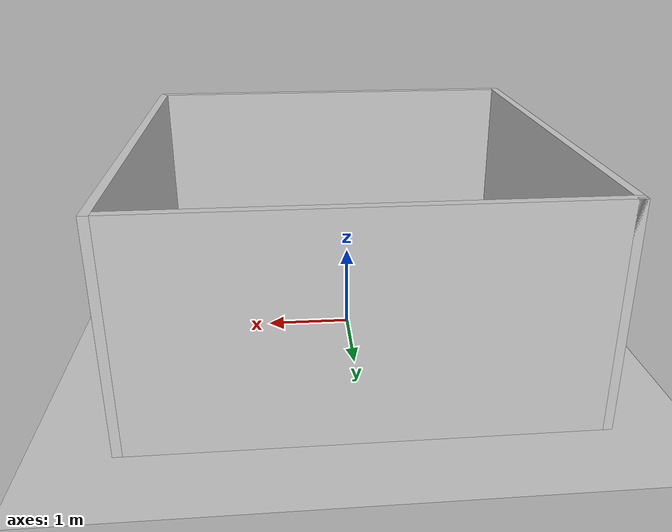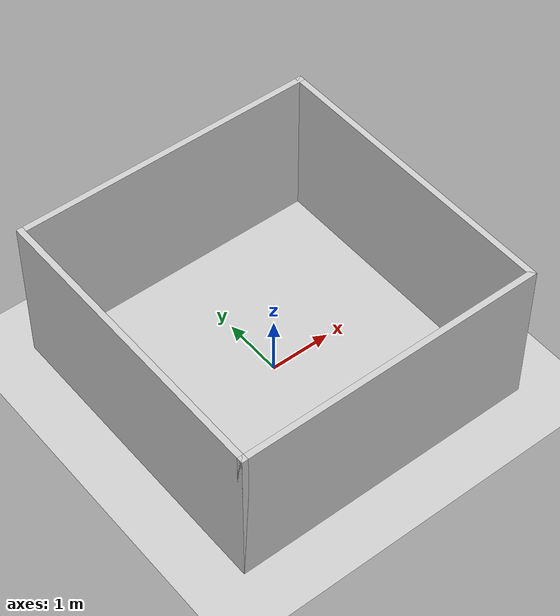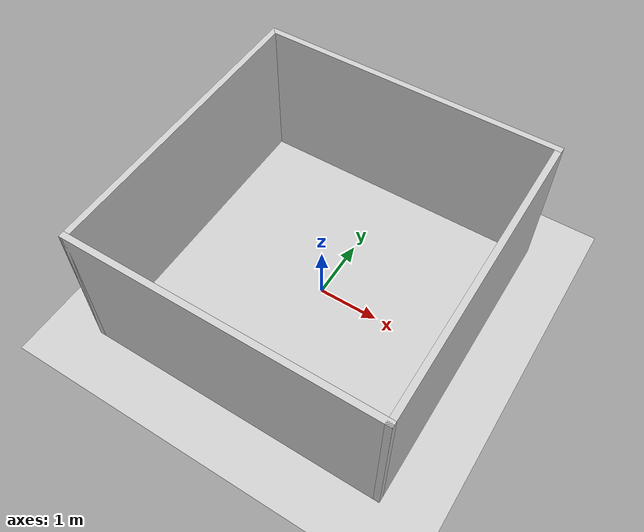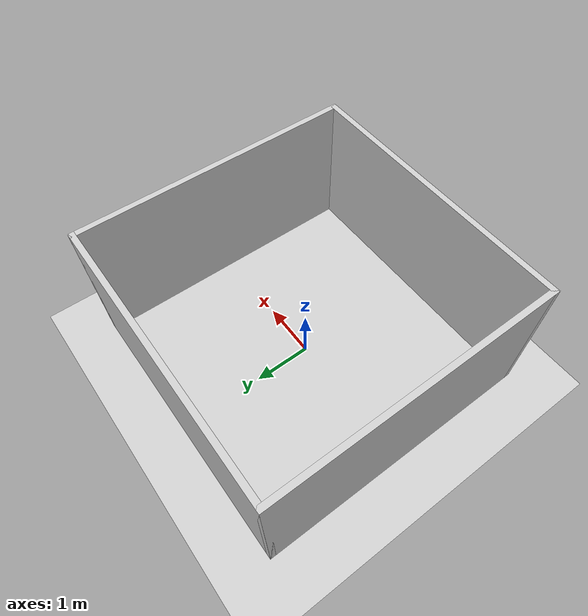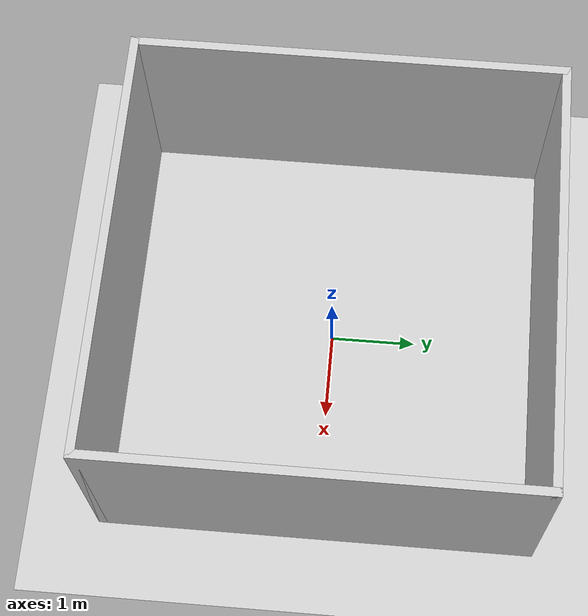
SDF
<sdf version='1.9'>
  <world name='windy'>
    <physics type="ode">
      <max_step_size>0.004</max_step_size>
      <real_time_factor>1.0</real_time_factor>
      <real_time_update_rate>250</real_time_update_rate>
    </physics>
    <plugin name='gz::sim::systems::Physics' filename='gz-sim-physics-system'/>
    <plugin name='gz::sim::systems::UserCommands' filename='gz-sim-user-commands-system'/>
    <plugin name='gz::sim::systems::SceneBroadcaster' filename='gz-sim-scene-broadcaster-system'/>
    <plugin name='gz::sim::systems::Contact' filename='gz-sim-contact-system'/>
    <plugin name='gz::sim::systems::Imu' filename='gz-sim-imu-system'/>
    <plugin name='gz::sim::systems::AirPressure' filename='gz-sim-air-pressure-system'/>
    <plugin name='gz::sim::systems::ApplyLinkWrench' filename='gz-sim-apply-link-wrench-system'/>
    <plugin name='gz::sim::systems::NavSat' filename='gz-sim-navsat-system'/>
    <plugin name='gz::sim::systems::Sensors' filename='gz-sim-sensors-system'>
      <render_engine>ogre2</render_engine>
    </plugin>
    <gui fullscreen='false'>

      <!-- 3D scene -->
      <plugin filename="MinimalScene" name="3D View">
        <gz-gui>
          <title>3D View</title>
          <property type="bool" key="showTitleBar">false</property>
          <property type="string" key="state">docked</property>
        </gz-gui>

        <engine>ogre2</engine>
        <scene>scene</scene>
        <ambient_light>0.4 0.4 0.4</ambient_light>
        <background_color>0.8 0.8 0.8</background_color>
        <camera_pose>-6 0 6 0 0.5 0</camera_pose>
        <camera_clip>
          <near>0.25</near>
          <far>25000</far>
        </camera_clip>
      </plugin>

      <!-- Plugins that add functionality to the scene -->
      <plugin filename="EntityContextMenuPlugin" name="Entity context menu">
        <gz-gui>
          <property key="state" type="string">floating</property>
          <property key="width" type="double">5</property>
          <property key="height" type="double">5</property>
          <property key="showTitleBar" type="bool">false</property>
        </gz-gui>
      </plugin>
      <plugin filename="GzSceneManager" name="Scene Manager">
        <gz-gui>
          <property key="resizable" type="bool">false</property>
          <property key="width" type="double">5</property>
          <property key="height" type="double">5</property>
          <property key="state" type="string">floating</property>
          <property key="showTitleBar" type="bool">false</property>
        </gz-gui>
      </plugin>
      <plugin filename="InteractiveViewControl" name="Interactive view control">
        <gz-gui>
          <property key="resizable" type="bool">false</property>
          <property key="width" type="double">5</property>
          <property key="height" type="double">5</property>
          <property key="state" type="string">floating</property>
          <property key="showTitleBar" type="bool">false</property>
        </gz-gui>
      </plugin>
      <plugin filename="CameraTracking" name="Camera Tracking">
        <gz-gui>
          <property key="resizable" type="bool">false</property>
          <property key="width" type="double">5</property>
          <property key="height" type="double">5</property>
          <property key="state" type="string">floating</property>
          <property key="showTitleBar" type="bool">false</property>
        </gz-gui>
      </plugin>
      <plugin filename="MarkerManager" name="Marker manager">
        <gz-gui>
          <property key="resizable" type="bool">false</property>
          <property key="width" type="double">5</property>
          <property key="height" type="double">5</property>
          <property key="state" type="string">floating</property>
          <property key="showTitleBar" type="bool">false</property>
        </gz-gui>
      </plugin>
      <plugin filename="SelectEntities" name="Select Entities">
        <gz-gui>
          <anchors target="Select entities">
            <line own="right" target="right"/>
            <line own="top" target="top"/>
          </anchors>
          <property key="resizable" type="bool">false</property>
          <property key="width" type="double">5</property>
          <property key="height" type="double">5</property>
          <property key="state" type="string">floating</property>
          <property key="showTitleBar" type="bool">false</property>
        </gz-gui>
      </plugin>
      <plugin filename="VisualizationCapabilities" name="Visualization Capabilities">
        <gz-gui>
          <property key="resizable" type="bool">false</property>
          <property key="width" type="double">5</property>
          <property key="height" type="double">5</property>
          <property key="state" type="string">floating</property>
          <property key="showTitleBar" type="bool">false</property>
        </gz-gui>
      </plugin>
      <plugin filename="Spawn" name="Spawn Entities">
        <gz-gui>
          <anchors target="Select entities">
            <line own="right" target="right"/>
            <line own="top" target="top"/>
          </anchors>
          <property key="resizable" type="bool">false</property>
          <property key="width" type="double">5</property>
          <property key="height" type="double">5</property>
          <property key="state" type="string">floating</property>
          <property key="showTitleBar" type="bool">false</property>
        </gz-gui>
      </plugin>

      <plugin name='World control' filename='WorldControl'>
        <gz-gui>
          <title>World control</title>
          <property type='bool' key='showTitleBar'>0</property>
          <property type='bool' key='resizable'>0</property>
          <property type='double' key='height'>72</property>
          <property type='double' key='width'>121</property>
          <property type='double' key='z'>1</property>
          <property type='string' key='state'>floating</property>
          <anchors target='3D View'>
            <line own='left' target='left'/>
            <line own='bottom' target='bottom'/>
          </anchors>
        </gz-gui>
        <play_pause>1</play_pause>
        <step>1</step>
        <start_paused>1</start_paused>
      </plugin>
      <plugin name='World stats' filename='WorldStats'>
        <gz-gui>
          <title>World stats</title>
          <property type='bool' key='showTitleBar'>0</property>
          <property type='bool' key='resizable'>0</property>
          <property type='double' key='height'>110</property>
          <property type='double' key='width'>290</property>
          <property type='double' key='z'>1</property>
          <property type='string' key='state'>floating</property>
          <anchors target='3D View'>
            <line own='right' target='right'/>
            <line own='bottom' target='bottom'/>
          </anchors>
        </gz-gui>
        <sim_time>1</sim_time>
        <real_time>1</real_time>
        <real_time_factor>1</real_time_factor>
        <iterations>1</iterations>
      </plugin>
      <plugin name='Entity tree' filename='EntityTree'/>
    </gui>
    <gravity>0 0 -9.8</gravity>
    <magnetic_field>6e-06 2.3e-05 -4.2e-05</magnetic_field>
    <atmosphere type='adiabatic'/>
    <scene>
      <grid>false</grid>
      <ambient>0.4 0.4 0.4 1</ambient>
      <background>0.7 0.7 0.7 1</background>
      <shadows>true</shadows>
    </scene>
    <model name='ground_plane'>
      <static>true</static>
      <link name='link'>
        <collision name='collision'>
          <geometry>
            <plane>
              <normal>0 0 1</normal>
              <size>1 1</size>
            </plane>
          </geometry>
          <surface>
            <friction>
              <ode/>
            </friction>
            <bounce/>
            <contact/>
          </surface>
        </collision>
        <visual name='visual'>
          <geometry>
            <plane>
              <normal>0 0 1</normal>
              <size>100 100</size>
            </plane>
          </geometry>
          <material>
            <ambient>0.8 0.8 0.8 1</ambient>
            <diffuse>0.8 0.8 0.8 1</diffuse>
            <specular>0.8 0.8 0.8 1</specular>
          </material>
        </visual>
        <pose>0 0 0 0 -0 0</pose>
        <inertial>
          <pose>0 0 0 0 -0 0</pose>
          <mass>1</mass>
          <inertia>
            <ixx>1</ixx>
            <ixy>0</ixy>
            <ixz>0</ixz>
            <iyy>1</iyy>
            <iyz>0</iyz>
            <izz>1</izz>
          </inertia>
        </inertial>
        <enable_wind>true</enable_wind>
      </link>
      <pose>0 0 0 0 -0 0</pose>
      <self_collide>false</self_collide>
    </model>
    <light name='sunUTC' type='directional'>
      <pose>0 0 500 0 -0 0</pose>
      <cast_shadows>true</cast_shadows>
      <intensity>1</intensity>
      <direction>0.001 0.625 -0.78</direction>
      <diffuse>0.904 0.904 0.904 1</diffuse>
      <specular>0.271 0.271 0.271 1</specular>
      <attenuation>
        <range>2000</range>
        <linear>0</linear>
        <constant>1</constant>
        <quadratic>0</quadratic>
      </attenuation>
      <spot>
        <inner_angle>0</inner_angle>
        <outer_angle>0</outer_angle>
        <falloff>0</falloff>
      </spot>
    </light>
    <model name="wall1">
      <static>true</static>
      <link name="wall1_link">
        <collision name="wall1_collision">
          <geometry>
            <box>
              <size>0.1 5 2.5</size> <!-- Wall thickness: 0.1m, height: 2.5m -->
            </box>
          </geometry>
        </collision>
        <visual name="wall1_visual">
          <geometry>
            <box>
              <size>0.1 5 2.5</size>
            </box>
          </geometry>
          <material>
            <ambient>0.8 0.8 0.8 1</ambient>
          </material>
        </visual>
        <pose>2.45 0 1.25 0 0 0</pose> <!-- Position wall on one side -->
      </link>
    </model>

    <!-- Wall 2 -->
    <model name="wall2">
      <static>true</static>
      <link name="wall2_link">
        <collision name="wall2_collision">
          <geometry>
            <box>
              <size>0.1 5 2.5</size>
            </box>
          </geometry>
        </collision>
        <visual name="wall2_visual">
          <geometry>
            <box>
              <size>0.1 5 2.5</size>
            </box>
          </geometry>
          <material>
            <ambient>0.8 0.8 0.8 1</ambient>
          </material>
        </visual>
        <pose>-2.45 0 1.25 0 0 0</pose> <!-- Opposite wall -->
      </link>
    </model>

    <!-- Wall 3 -->
    <model name="wall3">
      <static>true</static>
      <link name="wall3_link">
        <collision name="wall3_collision">
          <geometry>
            <box>
              <size>5 0.1 2.5</size>
            </box>
          </geometry>
        </collision>
        <visual name="wall3_visual">
          <geometry>
            <box>
              <size>5 0.1 2.5</size>
            </box>
          </geometry>
          <material>
            <ambient>0.8 0.8 0.8 1</ambient>
          </material>
        </visual>
        <pose>0 2.45 1.25 0 0 0</pose> <!-- Adjacent wall -->
      </link>
    </model>

    <!-- Wall 4 -->
    <model name="wall4">
      <static>true</static>
      <link name="wall4_link">
        <collision name="wall4_collision">
          <geometry>
            <box>
              <size>5 0.1 2.5</size>
            </box>
          </geometry>
        </collision>
        <visual name="wall4_visual">
          <geometry>
            <box>
              <size>5 0.1 2.5</size>
            </box>
          </geometry>
          <material>
            <ambient>0.8 0.8 0.8 1</ambient>
          </material>
        </visual>
        <pose>0 -2.45 1.25 0 0 0</pose> <!-- Opposite wall -->
      </link>
    </model>
    <spherical_coordinates>
      <surface_model>EARTH_WGS84</surface_model>
      <world_frame_orientation>ENU</world_frame_orientation>
      <latitude_deg>47.397971057728974</latitude_deg>
      <longitude_deg> 8.546163739800146</longitude_deg>
      <elevation>0</elevation>
    </spherical_coordinates>
  </world>
</sdf>
